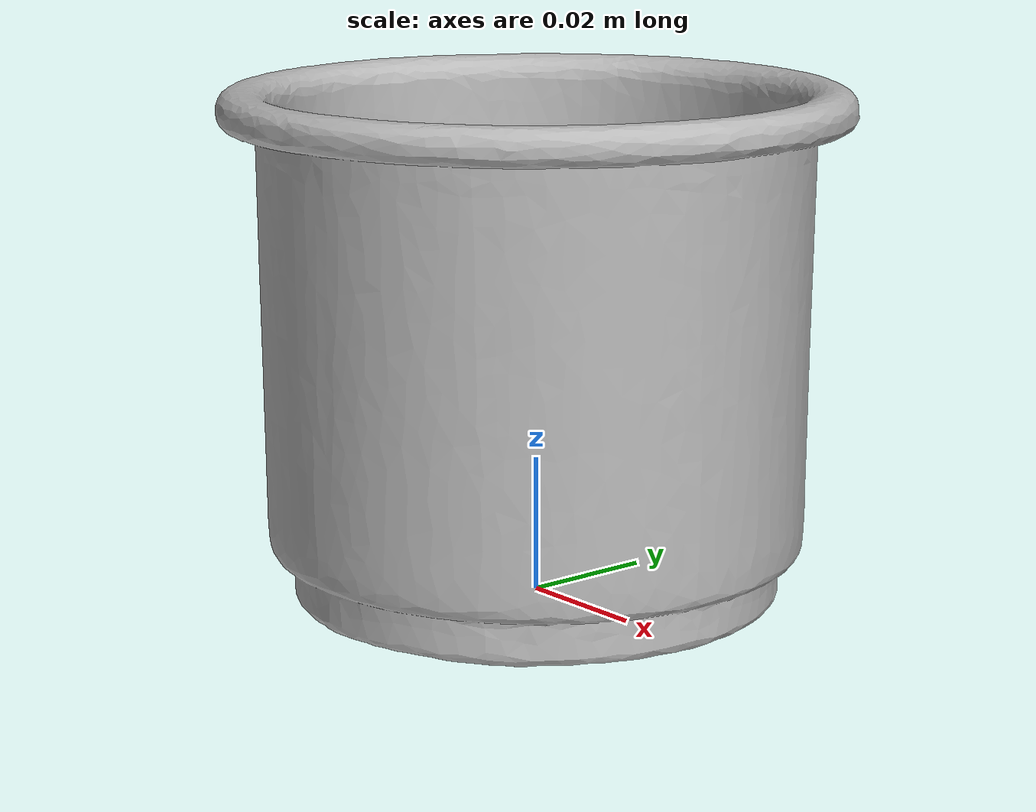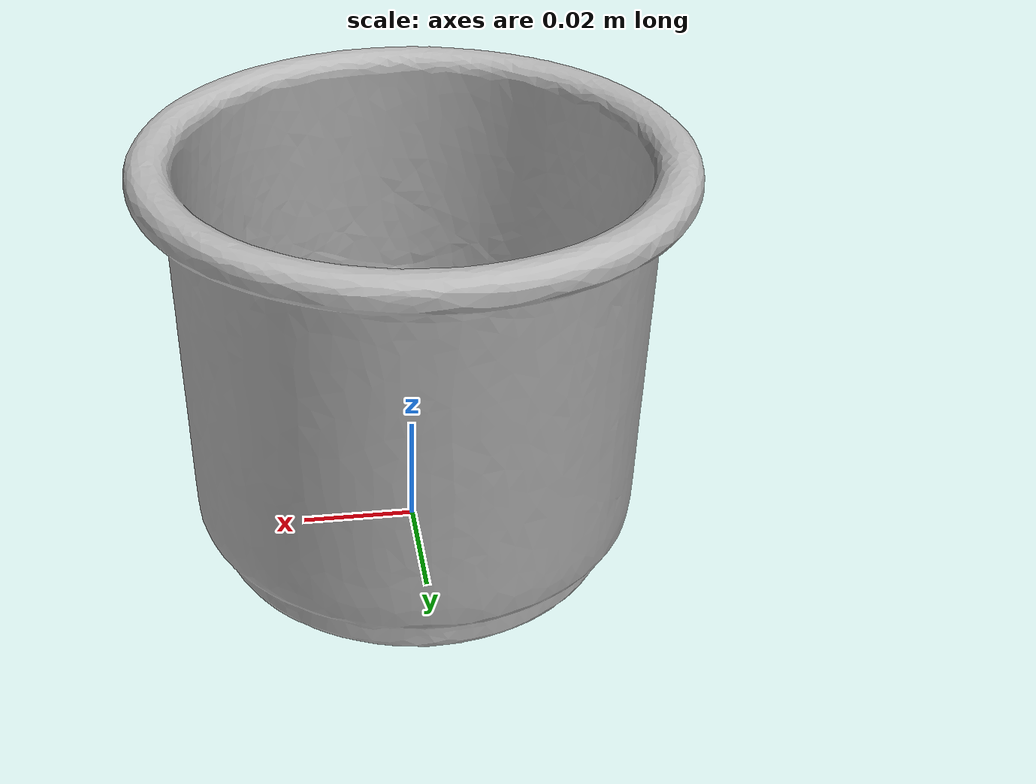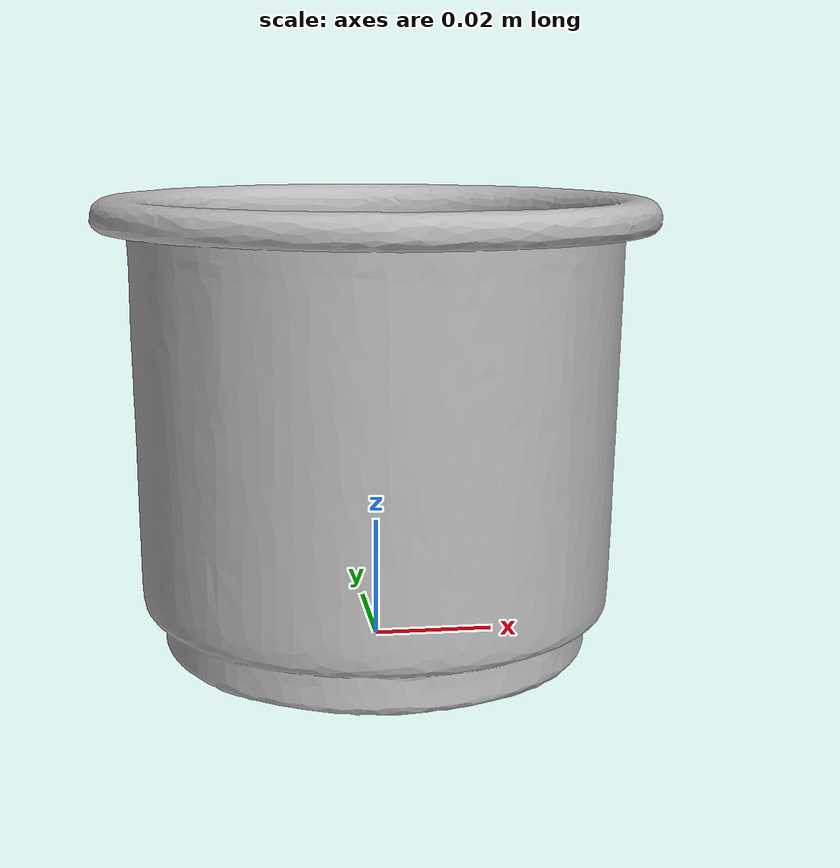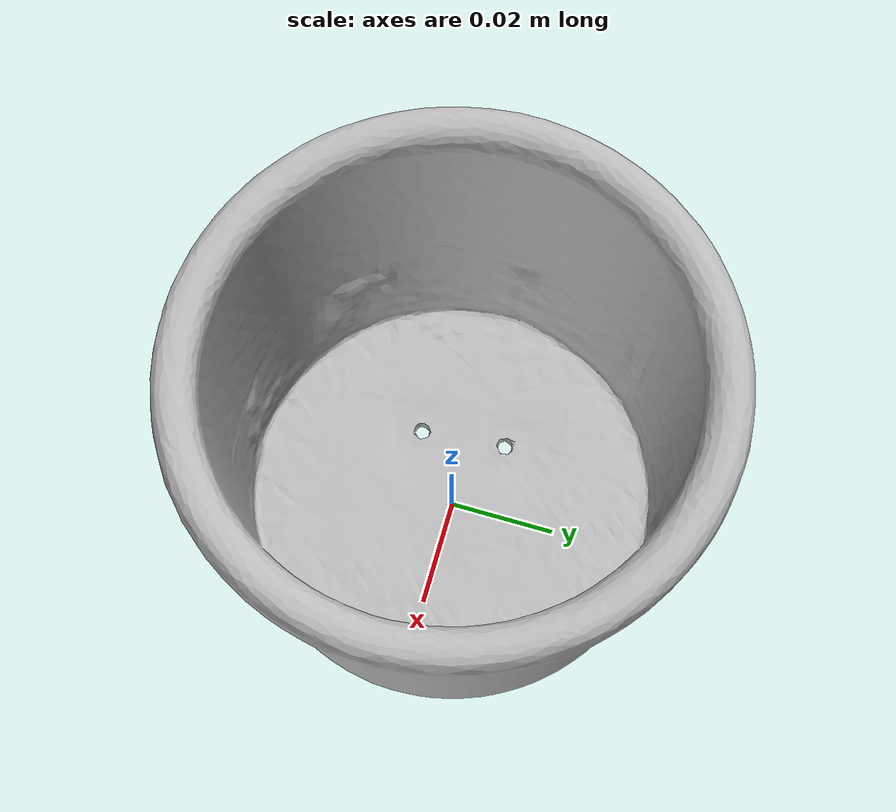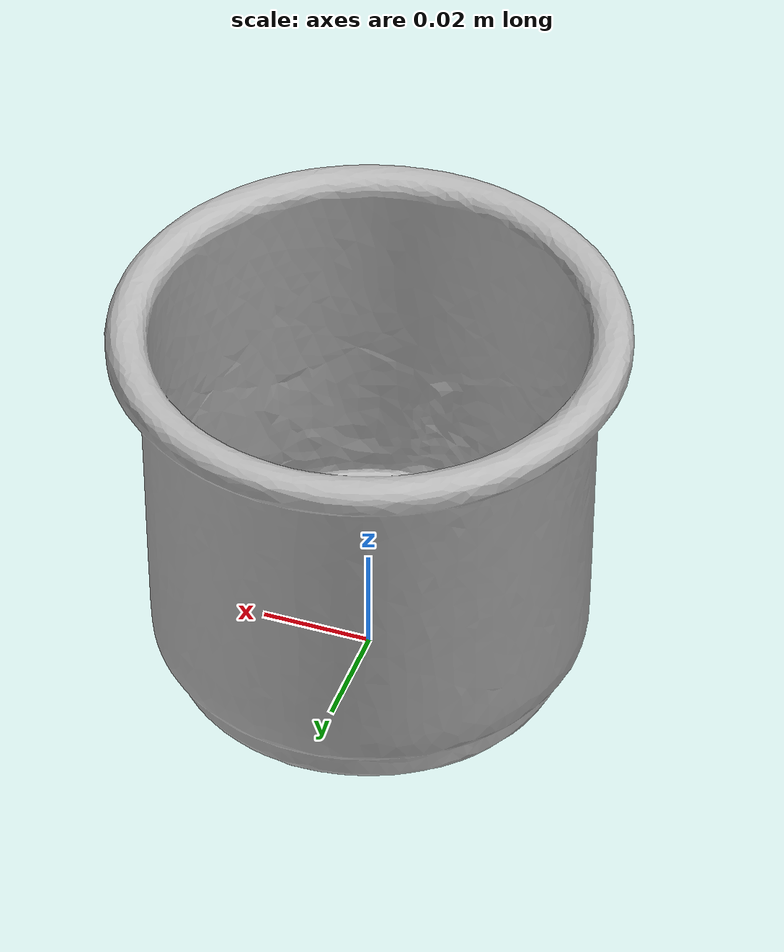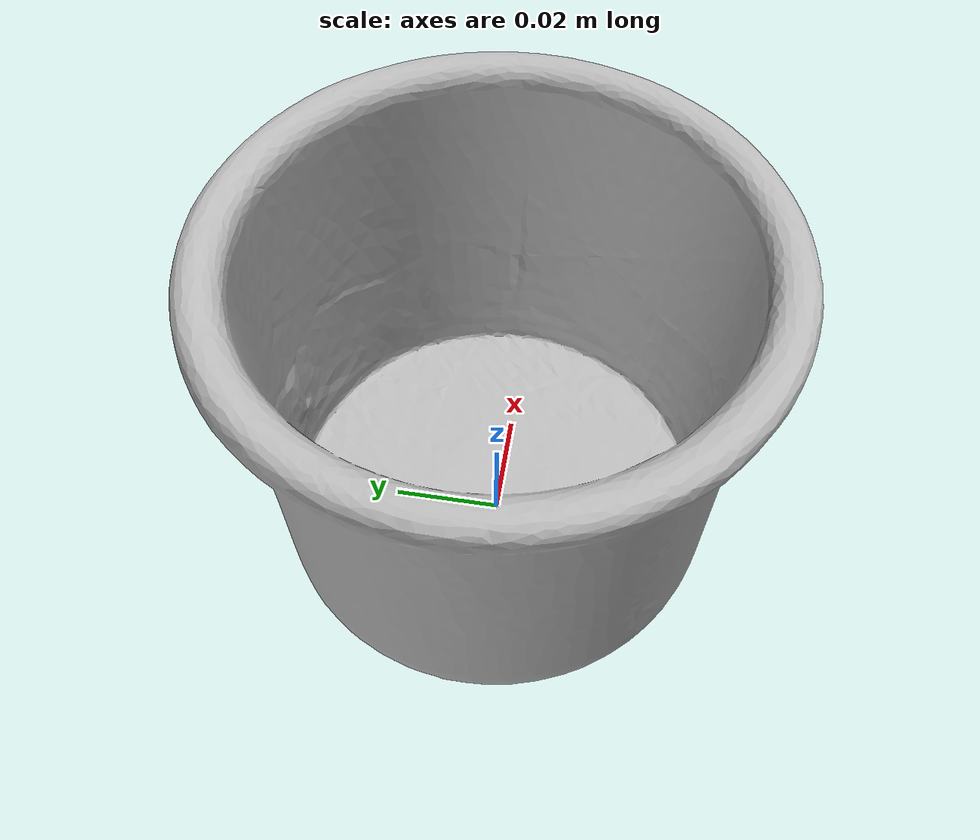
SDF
<?xml version="1.0" ?>
<sdf version='1.8'>
  <model name='ycb_065-h_cups'>
    <link name='body'>
      <inertial>
        <mass>0.017</mass>
        <pose>-0.00101215868 0.000793556214 0.0362923652 0 0 0</pose>
        <inertia>
          <ixx>2.18790819254e-05</ixx>
          <ixy>2.30147039343e-08</ixy>
          <ixz>1.29471132969e-08</ixz>
          <iyy>2.19072129345e-05</iyy>
          <iyz>-1.0091338676e-07</iyz>
          <izz>2.34372741785e-05</izz>
        </inertia>
      </inertial>
      <visual name='ycb_065-h_cups_visual'>
        <pose>-0.003548 -0.014015 0.000358 0 0 0</pose>
        <geometry>
          <mesh>
            <uri>model://ycb_065-h_cups/meshes/textured.dae</uri>
          </mesh>
        </geometry>
      </visual>
      <collision name='ycb_065-h_cups_collision'>
        <pose>-0.003548 -0.014015 0.000358 0 0 0</pose>
        <geometry>
          <mesh>
            <uri>model://ycb_065-h_cups/meshes/nontextured.stl</uri>
          </mesh>
        </geometry>
        <max_contacts>10</max_contacts>
        <surface>
          <contact>
            <ode>
              <kp>1e15</kp>
              <kd>1e13</kd>
            </ode>
          </contact>
        </surface>
      </collision>
    </link>
  </model>
</sdf>
